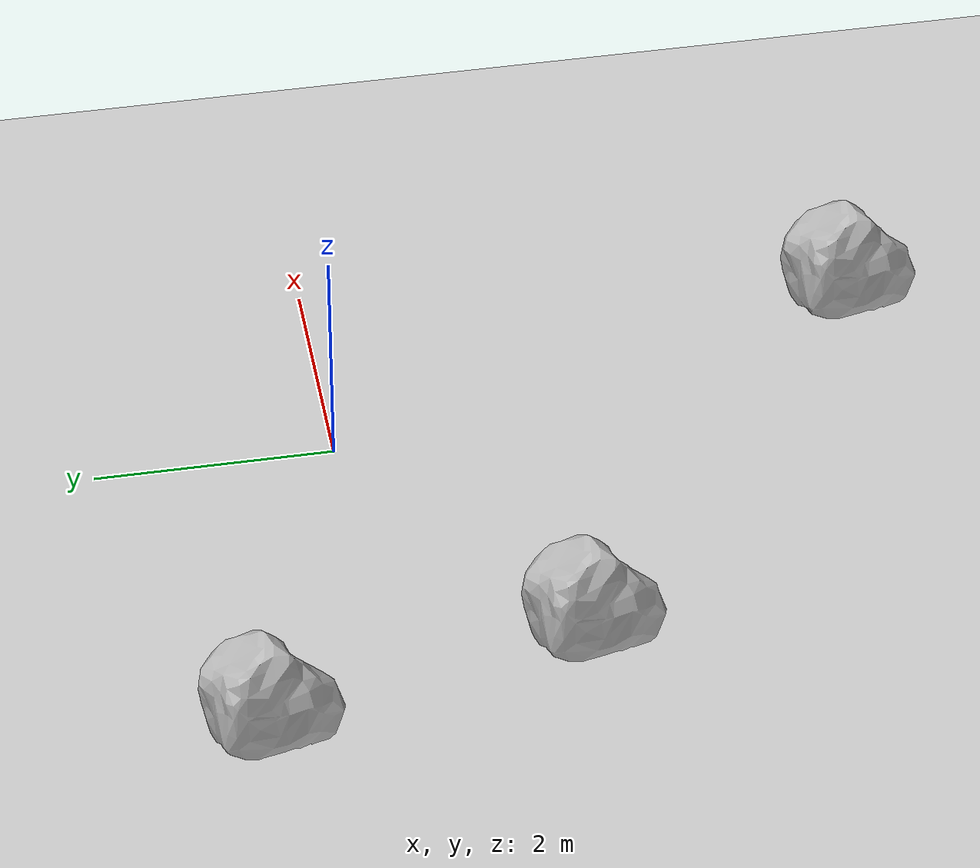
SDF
<sdf version="1.6">
 <world name="default">
  <light name="sun" type="directional">
   <pose>0 0 10 0 -0 0</pose>
   <diffuse>0.8 0.8 0.8 1</diffuse>
   <specular>0.2 0.2 0.2 1</specular>
   <attenuation>
    <range>1000</range>
    <constant>0.9</constant>
    <linear>0.01</linear>
    <quadratic>0.001</quadratic>
   </attenuation>
   <direction>-0.5 0.1 -0.9</direction>
  </light>
  <model name="ground_plane">
   <static>1</static>
   <link name="link">
    <collision name="collision">
     <geometry><plane><normal>0 0 1</normal><size>100 100</size></plane></geometry>
     <surface>
      <contact><collide_bitmask>65535</collide_bitmask></contact>
      <friction><ode><mu>100</mu><mu2>50</mu2></ode></friction>
     </surface>
    </collision>
    <visual name="visual">
     <cast_shadows>0</cast_shadows>
     <geometry><plane><normal>0 0 1</normal><size>100 100</size></plane></geometry>
     <material>
      <script><uri>file://media/materials/scripts/gazebo.material</uri><name>Gazebo/Grey</name></script>
     </material>
    </visual>
   </link>
  </model>
  <gravity>0 0 -9.8</gravity>
  <magnetic_field>6e-06 2.3e-05 -4.2e-05</magnetic_field>
  <atmosphere type="adiabatic"/>
  <physics name="default_physics" default="0" type="ode">
   <max_step_size>0.001</max_step_size>
   <real_time_factor>1</real_time_factor>
   <real_time_update_rate>1000</real_time_update_rate>
  </physics>
  <scene><ambient>0.4 0.4 0.4 1</ambient><background>0.7 0.7 0.7 1</background><shadows>1</shadows></scene>
  <spherical_coordinates>
   <surface_model>EARTH_WGS84</surface_model>
   <latitude_deg>0</latitude_deg>
   <longitude_deg>0</longitude_deg>
   <elevation>0</elevation>
   <heading_deg>0</heading_deg>
  </spherical_coordinates>
  <model name="stone1">
   <pose>-2.62191 -2.08216 0 0 -0 0</pose>
   <static>1</static>
   <link name="stone1_link">
    <collision name="stone1_collision">
     <geometry><mesh><uri>model://stone1/meshes/s1.dae</uri><scale>5 5 5</scale></mesh></geometry>
    </collision>
    <visual name="stone1_visual">
     <geometry><mesh><uri>model://stone1/meshes/s1.dae</uri><scale>1 1 1</scale></mesh></geometry>
    </visual>
   </link>
  </model>
  <model name="stone1_0">
   <pose>-3.25293 0.586553 0 0 -0 0</pose>
   <static>1</static>
   <link name="stone1_link">
    <collision name="stone1_collision">
     <geometry><mesh><uri>model://stone1/meshes/s1.dae</uri><scale>5 5 5</scale></mesh></geometry>
    </collision>
    <visual name="stone1_visual">
     <geometry><mesh><uri>model://stone1/meshes/s1.dae</uri><scale>1 1 1</scale></mesh></geometry>
    </visual>
   </link>
  </model>
  <model name="stone1_1">
   <pose>1.12787 -5.02511 0 0 -0 0</pose>
   <static>1</static>
   <link name="stone1_link">
    <collision name="stone1_collision">
     <geometry><mesh><uri>model://stone1/meshes/s1.dae</uri><scale>5 5 5</scale></mesh></geometry>
    </collision>
    <visual name="stone1_visual">
     <geometry><mesh><uri>model://stone1/meshes/s1.dae</uri><scale>1 1 1</scale></mesh></geometry>
    </visual>
   </link>
  </model>
 </world>
</sdf>
